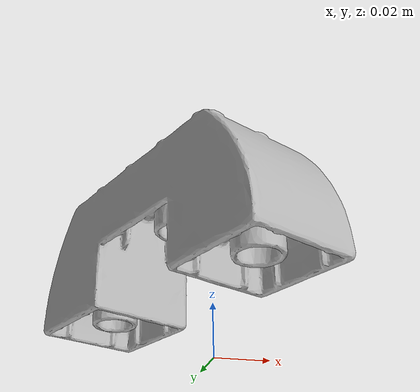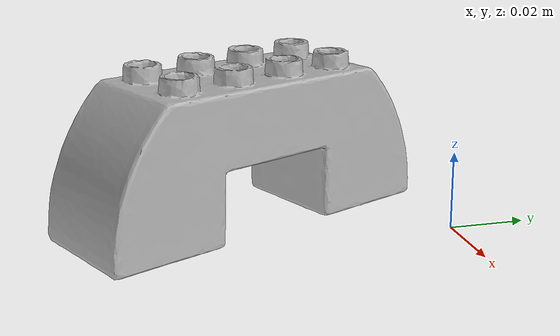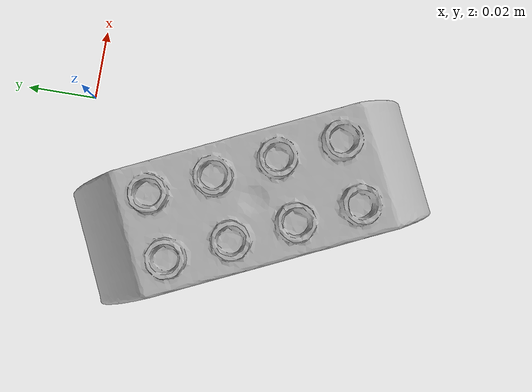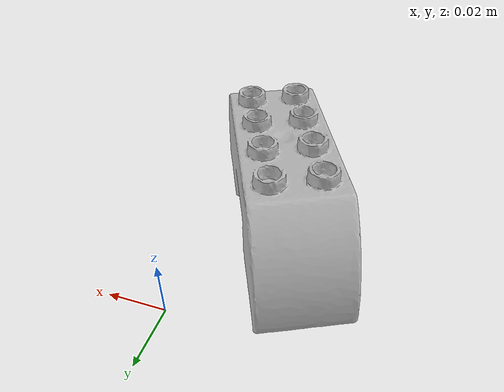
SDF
<?xml version='1.0'?>
<sdf version="1.4">
  <model name="e_lego_duplo">
    <static>false</static>
    <link name="link">
      <inertial>
        <pose>-0.023206841063979647 -0.05012559062881336 0.023705285345941213 1.5676501598995043 -0.24133019968710517 0.4370759024429555</pose>
        <mass>6.022236391070967e-05</mass>
        <inertia>
          <ixx>5.1339284855289505e-08</ixx>
          <ixy>1.5319079342869261e-24</ixy>
          <ixz>4.815152046025747e-24</ixz>
          <iyy>5.124040664137572e-08</iyy>
          <iyz>3.100866196681006e-26</iyz>
          <izz>1.1282241938188197e-08</izz>
        </inertia>
      </inertial>
      <collision name="collision">
        <geometry>
          <mesh>
            <!-- Use a downsampled mesh for collisions -->
            <uri>model://073-e_lego_duplo/google_16k/073-e_lego_duplo.obj</uri>
            </mesh>
        </geometry>
        <surface>
          <friction>
            <ode>
              <mu>0.9</mu>
              <mu2>0.9</mu2>
            </ode>
          </friction>
          <contact>
            <ode>
              <kp>1000000000000.0</kp>
              <kd>1</kd>
              <min_depth>0.0001</min_depth>
              <max_vel>0.01</max_vel>
            </ode>
          </contact>
          <bounce>
            <restitution_coefficient>0.1</restitution_coefficient>
            <threshold>1000.0</threshold>
          </bounce>
        </surface>
      </collision>
      <visual name="visual">
        <geometry>
          <mesh>
            <uri>model://073-e_lego_duplo/google_16k/073-e_lego_duplo.dae</uri>
            </mesh>
        </geometry>
      </visual>
    </link>
  </model>
</sdf>
